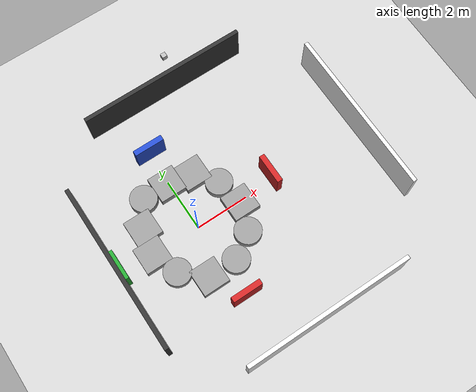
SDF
<sdf version="1.6">
 <world name="default">
  <light name="sun" type="directional">
   <cast_shadows>0</cast_shadows>
   <pose>0 0 10 0 -0 0</pose>
   <diffuse>0.8 0.8 0.8 1</diffuse>
   <specular>0.2 0.2 0.2 1</specular>
   <attenuation>
    <range>1000</range>
    <constant>0.9</constant>
    <linear>0.01</linear>
    <quadratic>0.001</quadratic>
   </attenuation>
   <direction>-0.5 0.1 -0.9</direction>
  </light>
  <model name="ground_plane">
   <static>1</static>
   <link name="link">
    <collision name="collision">
     <geometry><plane><normal>0 0 1</normal><size>100 100</size></plane></geometry>
     <surface>
      <contact><collide_bitmask>65535</collide_bitmask></contact>
      <friction><ode><mu>100</mu><mu2>50</mu2></ode></friction>
     </surface>
    </collision>
    <visual name="visual">
     <cast_shadows>0</cast_shadows>
     <geometry><plane><normal>0 0 1</normal><size>100 100</size></plane></geometry>
     <material>
      <script><uri>file://media/materials/scripts/gazebo.material</uri><name>Gazebo/Grey</name></script>
     </material>
    </visual>
   </link>
  </model>
  <gravity>0 0 -9.8</gravity>
  <magnetic_field>6e-06 2.3e-05 -4.2e-05</magnetic_field>
  <atmosphere type="adiabatic"/>
  <physics name="default_physics" default="0" type="ode">
   <max_step_size>0.001</max_step_size>
   <real_time_update_rate>0</real_time_update_rate>
   <real_time_factor>1</real_time_factor>
  </physics>
  <scene><ambient>0.4 0.4 0.4 1</ambient><background>0.7 0.7 0.7 1</background><shadows>0</shadows></scene>
  <spherical_coordinates>
   <surface_model>EARTH_WGS84</surface_model>
   <latitude_deg>0</latitude_deg>
   <longitude_deg>0</longitude_deg>
   <elevation>0</elevation>
   <heading_deg>0</heading_deg>
  </spherical_coordinates>
  <model name="whiskeye_square_world">
   <pose>1.825 0 0 0 -0 0</pose>
   <link name="Wall_3">
    <collision name="Wall_3_Collision">
     <geometry><box><size>6.3 0.15 1.5</size></box></geometry>
     <pose>0 0 0.75 0 -0 0</pose>
    </collision>
    <visual name="Wall_3_Visual">
     <pose>0 0 0.75 0 -0 0</pose>
     <geometry><box><size>6.3 0.15 1.5</size></box></geometry>
     <material>
      <ambient>0.2 0.2 0.2 1</ambient>
      <diffuse>0.2 0.2 0.2 1</diffuse>
      <specular>0.1 0.1 0.1 1</specular>
      <emissive>0 0 0 0</emissive>
     </material>
     <meta><layer>0</layer></meta>
    </visual>
    <pose>-4.925 0 0 0 -0 1.5708</pose>
   </link>
   <link name="Wall_5">
    <collision name="Wall_5_Collision">
     <geometry><box><size>6.3 0.15 1.5</size></box></geometry>
     <pose>0 0 0.75 0 -0 0</pose>
    </collision>
    <visual name="Wall_5_Visual">
     <pose>0 0 0.75 0 -0 0</pose>
     <geometry><box><size>6.3 0.15 1.5</size></box></geometry>
     <material>
      <ambient>0.2 0.2 0.2 1</ambient>
      <diffuse>0.2 0.2 0.2 1</diffuse>
      <specular>0.1 0.1 0.1 1</specular>
      <emissive>0 0 0 0</emissive>
     </material>
     <meta><layer>0</layer></meta>
    </visual>
    <pose>0 5 0 0 -0 0</pose>
   </link>
   <link name="Wall_7">
    <collision name="Wall_7_Collision">
     <geometry><box><size>6.3 0.15 1.5</size></box></geometry>
     <pose>0 0 0.75 0 -0 0</pose>
    </collision>
    <visual name="Wall_7_Visual">
     <pose>0 0 0.75 0 -0 0</pose>
     <geometry><box><size>6.3 0.15 1.5</size></box></geometry>
     <material>
      <ambient>1 1 1 1</ambient>
      <diffuse>1 1 1 1</diffuse>
      <specular>0.1 0.1 0.1 1</specular>
      <emissive>0 0 0 0</emissive>
     </material>
     <meta><layer>0</layer></meta>
    </visual>
    <pose>4.925 0.075 0 0 0 -1.5708</pose>
   </link>
   <link name="Wall_9">
    <collision name="Wall_9_Collision">
     <geometry><box><size>6.3 0.15 1.5</size></box></geometry>
     <pose>0 0 0.75 0 -0 0</pose>
    </collision>
    <visual name="Wall_9_Visual">
     <pose>0 0 0.75 0 -0 0</pose>
     <geometry><box><size>6.3 0.15 1.5</size></box></geometry>
     <material>
      <ambient>1 1 1 1</ambient>
      <diffuse>1 1 1 1</diffuse>
      <specular>0.1 0.1 0.1 1</specular>
      <emissive>0 0 0 0</emissive>
     </material>
     <meta><layer>0</layer></meta>
    </visual>
    <pose>0 -5 0 0 -0 0</pose>
   </link>
   <static>1</static>
  </model>
  <audio><device>default</device></audio>
  <model name="camera">
   <static>1</static>
   <pose>0 0 12 0 1.57 0</pose>
   <link name="camera::link">
    <inertial>
     <mass>0.1</mass>
     <inertia>
      <ixx>0.000166667</ixx>
      <iyy>0.000166667</iyy>
      <izz>0.000166667</izz>
      <ixy>0</ixy>
      <ixz>0</ixz>
      <iyz>0</iyz>
     </inertia>
    </inertial>
    <collision name="collision"><geometry><box><size>0.1 0.1 0.1</size></box></geometry></collision>
    <visual name="visual"><geometry><box><size>0.1 0.1 0.1</size></box></geometry></visual>
    <sensor name="camera" type="camera">
     <camera name="__default__">
      <horizontal_fov>1.2</horizontal_fov>
      <image><width>640</width><height>480</height></image>
      <clip><near>0.1</near><far>100</far></clip>
     </camera>
     <always_on>1</always_on>
     <update_rate>5</update_rate>
     <visualize>1</visualize>
     <plugin name="camera_controller" filename="libgazebo_ros_camera.so">
      <alwaysOn>1</alwaysOn>
      <updateRate>30.0</updateRate>
      <cameraName>overhead/camera</cameraName>
      <imageTopicName>image</imageTopicName>
      <cameraInfoTopicName>camera_info</cameraInfoTopicName>
      <frameName>camera_link</frameName>
      <hackBaseline>0.07</hackBaseline>
      <distortionK1>0.0</distortionK1>
      <distortionK2>0.0</distortionK2>
      <distortionK3>0.0</distortionK3>
      <distortionT1>0.0</distortionT1>
      <distortionT2>0.0</distortionT2>
     </plugin>
    </sensor>
   </link>
  </model>
  <model name="unit_box_1">
   <static>1</static>
   <pose>0 -3 1 0 -0 1.57</pose>
   <link name="link">
    <inertial>
     <mass>1</mass>
     <inertia>
      <ixx>0.166667</ixx>
      <ixy>0</ixy>
      <ixz>0</ixz>
      <iyy>0.166667</iyy>
      <iyz>0</iyz>
      <izz>0.166667</izz>
     </inertia>
    </inertial>
    <collision name="collision"><geometry><box><size>0.2 1.1 0.9</size></box></geometry></collision>
    <visual name="visual">
     <geometry><box><size>0.2 1.1 0.9</size></box></geometry>
     <material>
      <script><name>Gazebo/Red</name><uri>file://media/materials/scripts/gazebo.material</uri></script>
     </material>
    </visual>
   </link>
  </model>
  <model name="tactile_box">
   <static>1</static>
   <pose>-0.638358 -1.70414 0.15 0 -0 0</pose>
   <link name="link">
    <inertial>
     <mass>1</mass>
     <inertia>
      <ixx>0.166667</ixx>
      <ixy>0</ixy>
      <ixz>0</ixz>
      <iyy>0.166667</iyy>
      <iyz>0</iyz>
      <izz>0.166667</izz>
     </inertia>
    </inertial>
    <collision name="collision">
     <geometry><box><size>1 1 0.3</size></box></geometry>
     <max_contacts>24</max_contacts>
    </collision>
    <visual name="visual">
     <geometry><box><size>1 1 0.3</size></box></geometry>
     <material>
      <script><name>Gazebo/Grey</name><uri>file://media/materials/scripts/gazebo.material</uri></script>
     </material>
    </visual>
   </link>
  </model>
  <model name="tactile_cylinder">
   <static>1</static>
   <pose>-1.45428 -0.977008 0.15 0 -0 0</pose>
   <link name="link">
    <inertial>
     <mass>1</mass>
     <inertia><ixx>0.145833</ixx><ixy>0</ixy><ixz>0</ixz><iyy>0.145833</iyy><iyz>0</iyz><izz>0.125</izz></inertia>
    </inertial>
    <collision name="collision">
     <geometry><cylinder><radius>0.5</radius><length>0.3</length></cylinder></geometry>
     <max_contacts>24</max_contacts>
    </collision>
    <visual name="visual">
     <geometry><cylinder><radius>0.5</radius><length>0.3</length></cylinder></geometry>
     <material>
      <script><name>Gazebo/Grey</name><uri>file://media/materials/scripts/gazebo.material</uri></script>
     </material>
    </visual>
   </link>
  </model>
  <model name="tactile_box_clone">
   <static>1</static>
   <pose>-1.83318 0 0.15 0 -0 0</pose>
   <link name="link">
    <inertial>
     <mass>1</mass>
     <inertia>
      <ixx>0.166667</ixx>
      <ixy>0</ixy>
      <ixz>0</ixz>
      <iyy>0.166667</iyy>
      <iyz>0</iyz>
      <izz>0.166667</izz>
     </inertia>
    </inertial>
    <collision name="collision">
     <geometry><box><size>1 1 0.3</size></box></geometry>
     <max_contacts>24</max_contacts>
    </collision>
    <visual name="visual">
     <geometry><box><size>1 1 0.3</size></box></geometry>
     <material>
      <script><name>Gazebo/Grey</name><uri>file://media/materials/scripts/gazebo.material</uri></script>
     </material>
    </visual>
   </link>
  </model>
  <model name="unit_box_2">
   <static>1</static>
   <pose>3 0 1 0 -0 0</pose>
   <link name="link">
    <inertial>
     <mass>1</mass>
     <inertia>
      <ixx>0.166667</ixx>
      <ixy>0</ixy>
      <ixz>0</ixz>
      <iyy>0.166667</iyy>
      <iyz>0</iyz>
      <izz>0.166667</izz>
     </inertia>
    </inertial>
    <collision name="collision"><geometry><box><size>0.2 1.1 0.95</size></box></geometry></collision>
    <visual name="visual">
     <geometry><box><size>0.2 1.1 0.95</size></box></geometry>
     <material>
      <script><name>Gazebo/Red</name><uri>file://media/materials/scripts/gazebo.material</uri></script>
     </material>
    </visual>
   </link>
  </model>
  <model name="unit_box_3">
   <static>1</static>
   <pose>0 3 1 0 -0 1.57</pose>
   <link name="link">
    <inertial>
     <mass>1</mass>
     <inertia>
      <ixx>0.166667</ixx>
      <ixy>0</ixy>
      <ixz>0</ixz>
      <iyy>0.166667</iyy>
      <iyz>0</iyz>
      <izz>0.166667</izz>
     </inertia>
    </inertial>
    <collision name="collision"><geometry><box><size>0.2 1.1 0.95</size></box></geometry></collision>
    <visual name="visual">
     <geometry><box><size>0.2 1.1 0.95</size></box></geometry>
     <material>
      <script><name>Gazebo/Blue</name><uri>file://media/materials/scripts/gazebo.material</uri></script>
     </material>
    </visual>
   </link>
  </model>
  <model name="unit_box_4">
   <static>1</static>
   <pose>-3 0 1 0 -0 0</pose>
   <link name="link">
    <inertial>
     <mass>1</mass>
     <inertia>
      <ixx>0.166667</ixx>
      <ixy>0</ixy>
      <ixz>0</ixz>
      <iyy>0.166667</iyy>
      <iyz>0</iyz>
      <izz>0.166667</izz>
     </inertia>
    </inertial>
    <collision name="collision"><geometry><box><size>0.2 1.1 0.95</size></box></geometry></collision>
    <visual name="visual">
     <geometry><box><size>0.2 1.1 0.95</size></box></geometry>
     <material>
      <script><name>Gazebo/Green</name><uri>file://media/materials/scripts/gazebo.material</uri></script>
     </material>
    </visual>
   </link>
  </model>
  <model name="tactile_box_clone_0">
   <static>1</static>
   <pose>-1.61147 0.989419 0.15 0 -0 0</pose>
   <link name="link">
    <inertial>
     <mass>1</mass>
     <inertia>
      <ixx>0.166667</ixx>
      <ixy>0</ixy>
      <ixz>0</ixz>
      <iyy>0.166667</iyy>
      <iyz>0</iyz>
      <izz>0.166667</izz>
     </inertia>
    </inertial>
    <collision name="collision">
     <geometry><box><size>1 1 0.3</size></box></geometry>
     <max_contacts>24</max_contacts>
    </collision>
    <visual name="visual">
     <geometry><box><size>1 1 0.3</size></box></geometry>
     <material>
      <script><name>Gazebo/Grey</name><uri>file://media/materials/scripts/gazebo.material</uri></script>
     </material>
    </visual>
   </link>
  </model>
  <model name="tactile_cylinder_clone">
   <static>1</static>
   <pose>1.3342 -1.10593 0.15 0 -0 0</pose>
   <link name="link">
    <inertial>
     <mass>1</mass>
     <inertia><ixx>0.145833</ixx><ixy>0</ixy><ixz>0</ixz><iyy>0.145833</iyy><iyz>0</iyz><izz>0.125</izz></inertia>
    </inertial>
    <collision name="collision">
     <geometry><cylinder><radius>0.5</radius><length>0.3</length></cylinder></geometry>
     <max_contacts>24</max_contacts>
    </collision>
    <visual name="visual">
     <geometry><cylinder><radius>0.5</radius><length>0.3</length></cylinder></geometry>
     <material>
      <script><name>Gazebo/Grey</name><uri>file://media/materials/scripts/gazebo.material</uri></script>
     </material>
    </visual>
   </link>
  </model>
  <model name="tactile_cylinder_clone_0">
   <static>1</static>
   <pose>0.449113 -1.71438 0.15 0 -0 0</pose>
   <link name="link">
    <inertial>
     <mass>1</mass>
     <inertia><ixx>0.145833</ixx><ixy>0</ixy><ixz>0</ixz><iyy>0.145833</iyy><iyz>0</iyz><izz>0.125</izz></inertia>
    </inertial>
    <collision name="collision">
     <geometry><cylinder><radius>0.5</radius><length>0.3</length></cylinder></geometry>
     <max_contacts>24</max_contacts>
    </collision>
    <visual name="visual">
     <geometry><cylinder><radius>0.5</radius><length>0.3</length></cylinder></geometry>
     <material>
      <script><name>Gazebo/Grey</name><uri>file://media/materials/scripts/gazebo.material</uri></script>
     </material>
    </visual>
   </link>
  </model>
  <model name="tactile_box_clone_1">
   <static>1</static>
   <pose>1.66475 -0.12965 0.278925 0 -0 0</pose>
   <link name="link">
    <inertial>
     <mass>1</mass>
     <inertia>
      <ixx>0.166667</ixx>
      <ixy>0</ixy>
      <ixz>0</ixz>
      <iyy>0.166667</iyy>
      <iyz>0</iyz>
      <izz>0.166667</izz>
     </inertia>
    </inertial>
    <collision name="collision">
     <geometry><box><size>1 1 0.3</size></box></geometry>
     <max_contacts>24</max_contacts>
    </collision>
    <visual name="visual">
     <geometry><box><size>1 1 0.3</size></box></geometry>
     <material>
      <script><name>Gazebo/Grey</name><uri>file://media/materials/scripts/gazebo.material</uri></script>
     </material>
    </visual>
   </link>
  </model>
  <model name="tactile_cylinder_clone_clone">
   <static>1</static>
   <pose>1.48679 0.943756 0.15 0 -0 0</pose>
   <link name="link">
    <inertial>
     <mass>1</mass>
     <inertia><ixx>0.145833</ixx><ixy>0</ixy><ixz>0</ixz><iyy>0.145833</iyy><iyz>0</iyz><izz>0.125</izz></inertia>
    </inertial>
    <collision name="collision">
     <geometry><cylinder><radius>0.5</radius><length>0.3</length></cylinder></geometry>
     <max_contacts>24</max_contacts>
    </collision>
    <visual name="visual">
     <geometry><cylinder><radius>0.5</radius><length>0.3</length></cylinder></geometry>
     <material>
      <script><name>Gazebo/Grey</name><uri>file://media/materials/scripts/gazebo.material</uri></script>
     </material>
    </visual>
   </link>
  </model>
  <model name="tactile_cylinder_clone_1">
   <static>1</static>
   <pose>-1.04683 1.88082 0.15 0 -0 0</pose>
   <link name="link">
    <inertial>
     <mass>1</mass>
     <inertia><ixx>0.145833</ixx><ixy>0</ixy><ixz>0</ixz><iyy>0.145833</iyy><iyz>0</iyz><izz>0.125</izz></inertia>
    </inertial>
    <collision name="collision">
     <geometry><cylinder><radius>0.5</radius><length>0.3</length></cylinder></geometry>
     <max_contacts>24</max_contacts>
    </collision>
    <visual name="visual">
     <geometry><cylinder><radius>0.5</radius><length>0.3</length></cylinder></geometry>
     <material>
      <script><name>Gazebo/Grey</name><uri>file://media/materials/scripts/gazebo.material</uri></script>
     </material>
    </visual>
   </link>
  </model>
  <model name="tactile_box_clone_2">
   <static>1</static>
   <pose>-0.072619 1.8986 0.15 0 -0 0</pose>
   <link name="link">
    <inertial>
     <mass>1</mass>
     <inertia>
      <ixx>0.166667</ixx>
      <ixy>0</ixy>
      <ixz>0</ixz>
      <iyy>0.166667</iyy>
      <iyz>0</iyz>
      <izz>0.166667</izz>
     </inertia>
    </inertial>
    <collision name="collision">
     <geometry><box><size>1 1 0.3</size></box></geometry>
     <max_contacts>24</max_contacts>
    </collision>
    <visual name="visual">
     <geometry><box><size>1 1 0.3</size></box></geometry>
     <material>
      <script><name>Gazebo/Grey</name><uri>file://media/materials/scripts/gazebo.material</uri></script>
     </material>
    </visual>
   </link>
  </model>
  <model name="tactile_box_clone_2_clone">
   <static>1</static>
   <pose>0.892157 1.74746 0.15 0 -0 0</pose>
   <link name="link">
    <inertial>
     <mass>1</mass>
     <inertia>
      <ixx>0.166667</ixx>
      <ixy>0</ixy>
      <ixz>0</ixz>
      <iyy>0.166667</iyy>
      <iyz>0</iyz>
      <izz>0.166667</izz>
     </inertia>
    </inertial>
    <collision name="collision">
     <geometry><box><size>1 1 0.3</size></box></geometry>
     <max_contacts>24</max_contacts>
    </collision>
    <visual name="visual">
     <geometry><box><size>1 1 0.3</size></box></geometry>
     <material>
      <script><name>Gazebo/Grey</name><uri>file://media/materials/scripts/gazebo.material</uri></script>
     </material>
    </visual>
   </link>
  </model>
 </world>
</sdf>
